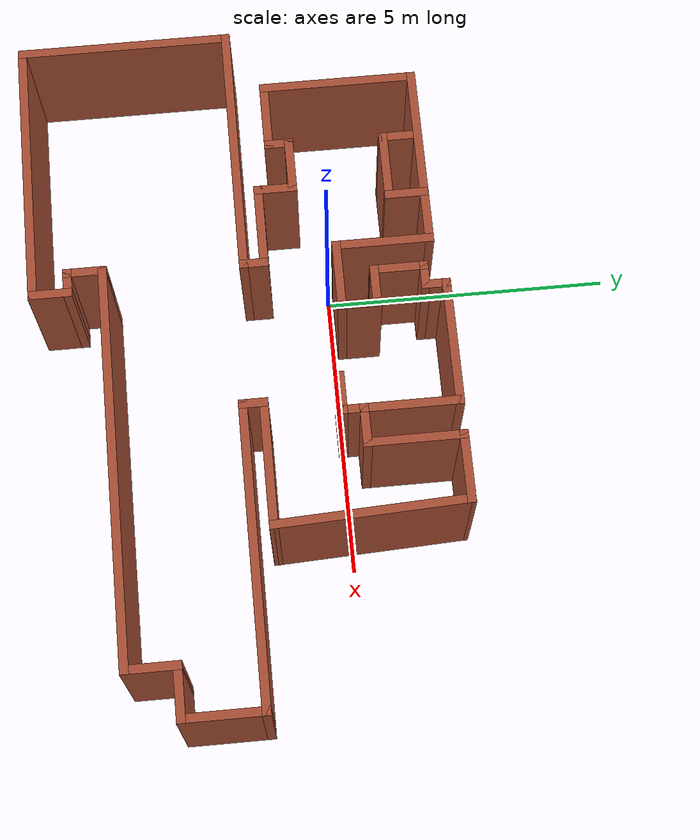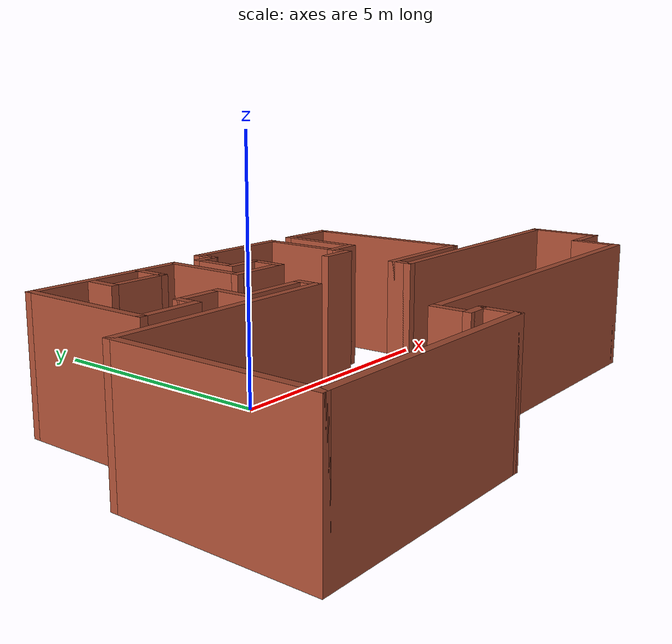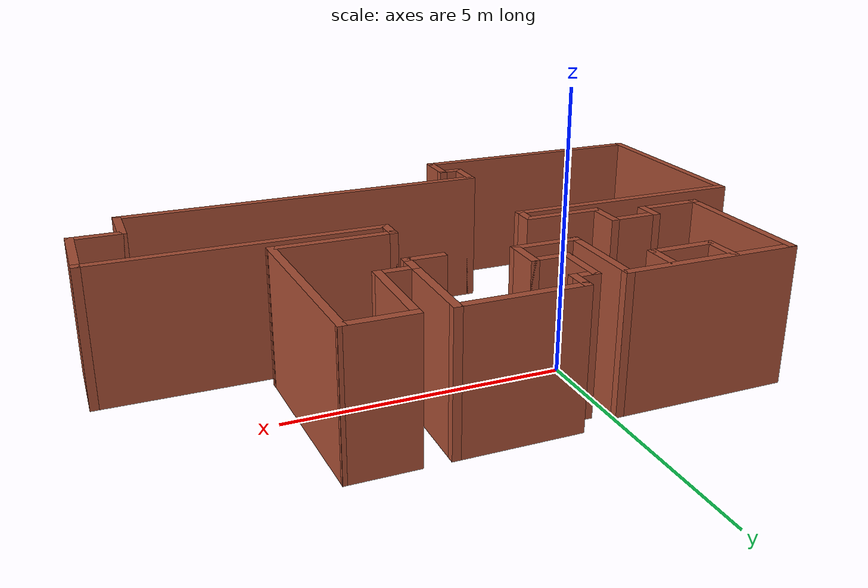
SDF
<?xml version='1.0'?>
<sdf version='1.6'>
  <model name='map_72'>
    <pose frame=''>1.7 -1.54528 0 0 -0 0</pose>
    <link name='Wall_1'>
      <collision name='Wall_1_Collision'>
        <geometry>
          <box>
            <size>1.25 0.15 2.5</size>
          </box>
        </geometry>
        <pose frame=''>0 0 1.25 0 -0 0</pose>
      </collision>
      <visual name='Wall_1_Visual'>
        <pose frame=''>0 0 1.25 0 -0 0</pose>
        <geometry>
          <box>
            <size>1.25 0.15 2.5</size>
          </box>
        </geometry>
        <material>
          <script>
            <uri>file://media/materials/scripts/gazebo.material</uri>
            <name>Gazebo/Bricks</name>
          </script>
          <ambient>1 1 1 1</ambient>
        </material>
        <meta>
          <layer>0</layer>
        </meta>
      </visual>
      <pose frame=''>2.275 3.49831 0 0 -0 3.14159</pose>
    </link>
    <link name='Wall_10'>
      <collision name='Wall_10_Collision'>
        <geometry>
          <box>
            <size>0.75 0.15 2.5</size>
          </box>
        </geometry>
        <pose frame=''>0 0 1.25 0 -0 0</pose>
      </collision>
      <visual name='Wall_10_Visual'>
        <pose frame=''>0 0 1.25 0 -0 0</pose>
        <geometry>
          <box>
            <size>0.75 0.15 2.5</size>
          </box>
        </geometry>
        <material>
          <script>
            <uri>file://media/materials/scripts/gazebo.material</uri>
            <name>Gazebo/Bricks</name>
          </script>
          <ambient>1 1 1 1</ambient>
        </material>
        <meta>
          <layer>0</layer>
        </meta>
      </visual>
      <pose frame=''>-0.725 1.99831 0 0 -0 -1.5708</pose>
    </link>
    <link name='Wall_11'>
      <collision name='Wall_11_Collision'>
        <geometry>
          <box>
            <size>1.25 0.15 2.5</size>
          </box>
        </geometry>
        <pose frame=''>0 0 1.25 0 -0 0</pose>
      </collision>
      <visual name='Wall_11_Visual'>
        <pose frame=''>0 0 1.25 0 -0 0</pose>
        <geometry>
          <box>
            <size>1.25 0.15 2.5</size>
          </box>
        </geometry>
        <material>
          <script>
            <uri>file://media/materials/scripts/gazebo.material</uri>
            <name>Gazebo/Bricks</name>
          </script>
          <ambient>1 1 1 1</ambient>
        </material>
        <meta>
          <layer>0</layer>
        </meta>
      </visual>
      <pose frame=''>-1.275 1.69831 0 0 -0 3.14159</pose>
    </link>
    <link name='Wall_12'>
      <collision name='Wall_12_Collision'>
        <geometry>
          <box>
            <size>1.75 0.15 2.5</size>
          </box>
        </geometry>
        <pose frame=''>0 0 1.25 0 -0 0</pose>
      </collision>
      <visual name='Wall_12_Visual'>
        <pose frame=''>0 0 1.25 0 -0 0</pose>
        <geometry>
          <box>
            <size>1.75 0.15 2.5</size>
          </box>
        </geometry>
        <material>
          <script>
            <uri>file://media/materials/scripts/gazebo.material</uri>
            <name>Gazebo/Bricks</name>
          </script>
          <ambient>1 1 1 1</ambient>
        </material>
        <meta>
          <layer>0</layer>
        </meta>
      </visual>
      <pose frame=''>-1.825 2.49831 0 0 -0 1.5708</pose>
    </link>
    <link name='Wall_13'>
      <collision name='Wall_13_Collision'>
        <geometry>
          <box>
            <size>3.25 0.15 2.5</size>
          </box>
        </geometry>
        <pose frame=''>0 0 1.25 0 -0 0</pose>
      </collision>
      <visual name='Wall_13_Visual'>
        <pose frame=''>0 0 1.25 0 -0 0</pose>
        <geometry>
          <box>
            <size>3.25 0.15 2.5</size>
          </box>
        </geometry>
        <material>
          <script>
            <uri>file://media/materials/scripts/gazebo.material</uri>
            <name>Gazebo/Bricks</name>
          </script>
          <ambient>1 1 1 1</ambient>
        </material>
        <meta>
          <layer>0</layer>
        </meta>
      </visual>
      <pose frame=''>-3.375 3.29831 0 0 -0 3.14159</pose>
    </link>
    <link name='Wall_14'>
      <collision name='Wall_14_Collision'>
        <geometry>
          <box>
            <size>2.75 0.15 2.5</size>
          </box>
        </geometry>
        <pose frame=''>0 0 1.25 0 -0 0</pose>
      </collision>
      <visual name='Wall_14_Visual'>
        <pose frame=''>0 0 1.25 0 -0 0</pose>
        <geometry>
          <box>
            <size>2.75 0.15 2.5</size>
          </box>
        </geometry>
        <material>
          <script>
            <uri>file://media/materials/scripts/gazebo.material</uri>
            <name>Gazebo/Bricks</name>
          </script>
          <ambient>1 1 1 1</ambient>
        </material>
        <meta>
          <layer>0</layer>
        </meta>
      </visual>
      <pose frame=''>-4.925 1.99831 0 0 -0 -1.5708</pose>
    </link>
    <link name='Wall_15'>
      <collision name='Wall_15_Collision'>
        <geometry>
          <box>
            <size>1.25 0.15 2.5</size>
          </box>
        </geometry>
        <pose frame=''>0 0 1.25 0 -0 0</pose>
      </collision>
      <visual name='Wall_15_Visual'>
        <pose frame=''>0 0 1.25 0 -0 0</pose>
        <geometry>
          <box>
            <size>1.25 0.15 2.5</size>
          </box>
        </geometry>
        <material>
          <script>
            <uri>file://media/materials/scripts/gazebo.material</uri>
            <name>Gazebo/Bricks</name>
          </script>
          <ambient>1 1 1 1</ambient>
        </material>
        <meta>
          <layer>0</layer>
        </meta>
      </visual>
      <pose frame=''>-4.375 0.698311 0 0 -0 0</pose>
    </link>
    <link name='Wall_16'>
      <collision name='Wall_16_Collision'>
        <geometry>
          <box>
            <size>0.5 0.15 2.5</size>
          </box>
        </geometry>
        <pose frame=''>0 0 1.25 0 -0 0</pose>
      </collision>
      <visual name='Wall_16_Visual'>
        <pose frame=''>0 0 1.25 0 -0 0</pose>
        <geometry>
          <box>
            <size>0.5 0.15 2.5</size>
          </box>
        </geometry>
        <material>
          <script>
            <uri>file://media/materials/scripts/gazebo.material</uri>
            <name>Gazebo/Bricks</name>
          </script>
          <ambient>1 1 1 1</ambient>
        </material>
        <meta>
          <layer>0</layer>
        </meta>
      </visual>
      <pose frame=''>-3.825 0.873311 0 0 -0 1.5708</pose>
    </link>
    <link name='Wall_17'>
      <collision name='Wall_17_Collision'>
        <geometry>
          <box>
            <size>1 0.15 2.5</size>
          </box>
        </geometry>
        <pose frame=''>0 0 1.25 0 -0 0</pose>
      </collision>
      <visual name='Wall_17_Visual'>
        <pose frame=''>0 0 1.25 0 -0 0</pose>
        <geometry>
          <box>
            <size>1 0.15 2.5</size>
          </box>
        </geometry>
        <material>
          <script>
            <uri>file://media/materials/scripts/gazebo.material</uri>
            <name>Gazebo/Bricks</name>
          </script>
          <ambient>1 1 1 1</ambient>
        </material>
        <meta>
          <layer>0</layer>
        </meta>
      </visual>
      <pose frame=''>-3.4 1.04831 0 0 -0 0</pose>
    </link>
    <link name='Wall_18'>
      <collision name='Wall_18_Collision'>
        <geometry>
          <box>
            <size>0.75 0.15 2.5</size>
          </box>
        </geometry>
        <pose frame=''>0 0 1.25 0 -0 0</pose>
      </collision>
      <visual name='Wall_18_Visual'>
        <pose frame=''>0 0 1.25 0 -0 0</pose>
        <geometry>
          <box>
            <size>0.75 0.15 2.5</size>
          </box>
        </geometry>
        <material>
          <script>
            <uri>file://media/materials/scripts/gazebo.material</uri>
            <name>Gazebo/Bricks</name>
          </script>
          <ambient>1 1 1 1</ambient>
        </material>
        <meta>
          <layer>0</layer>
        </meta>
      </visual>
      <pose frame=''>-2.975 0.748311 0 0 -0 -1.5708</pose>
    </link>
    <link name='Wall_19'>
      <collision name='Wall_19_Collision'>
        <geometry>
          <box>
            <size>1.5 0.15 2.5</size>
          </box>
        </geometry>
        <pose frame=''>0 0 1.25 0 -0 0</pose>
      </collision>
      <visual name='Wall_19_Visual'>
        <pose frame=''>0 0 1.25 0 -0 0</pose>
        <geometry>
          <box>
            <size>1.5 0.15 2.5</size>
          </box>
        </geometry>
        <material>
          <script>
            <uri>file://media/materials/scripts/gazebo.material</uri>
            <name>Gazebo/Bricks</name>
          </script>
          <ambient>1 1 1 1</ambient>
        </material>
        <meta>
          <layer>0</layer>
        </meta>
      </visual>
      <pose frame=''>-2.3 0.448311 0 0 -0 0</pose>
    </link>
    <link name='Wall_2'>
      <collision name='Wall_2_Collision'>
        <geometry>
          <box>
            <size>1.75 0.15 2.5</size>
          </box>
        </geometry>
        <pose frame=''>0 0 1.25 0 -0 0</pose>
      </collision>
      <visual name='Wall_2_Visual'>
        <pose frame=''>0 0 1.25 0 -0 0</pose>
        <geometry>
          <box>
            <size>1.75 0.15 2.5</size>
          </box>
        </geometry>
        <material>
          <script>
            <uri>file://media/materials/scripts/gazebo.material</uri>
            <name>Gazebo/Bricks</name>
          </script>
          <ambient>1 1 1 1</ambient>
        </material>
        <meta>
          <layer>0</layer>
        </meta>
      </visual>
      <pose frame=''>1.725 2.69831 0 0 -0 -1.5708</pose>
    </link>
    <link name='Wall_20'>
      <collision name='Wall_20_Collision'>
        <geometry>
          <box>
            <size>0.5 0.15 2.5</size>
          </box>
        </geometry>
        <pose frame=''>0 0 1.25 0 -0 0</pose>
      </collision>
      <visual name='Wall_20_Visual'>
        <pose frame=''>0 0 1.25 0 -0 0</pose>
        <geometry>
          <box>
            <size>0.5 0.15 2.5</size>
          </box>
        </geometry>
        <material>
          <script>
            <uri>file://media/materials/scripts/gazebo.material</uri>
            <name>Gazebo/Bricks</name>
          </script>
          <ambient>1 1 1 1</ambient>
        </material>
        <meta>
          <layer>0</layer>
        </meta>
      </visual>
      <pose frame=''>-1.625 0.273311 0 0 -0 -1.5708</pose>
    </link>
    <link name='Wall_21'>
      <collision name='Wall_21_Collision'>
        <geometry>
          <box>
            <size>4.5 0.15 2.5</size>
          </box>
        </geometry>
        <pose frame=''>0 0 1.25 0 -0 0</pose>
      </collision>
      <visual name='Wall_21_Visual'>
        <pose frame=''>0 0 1.25 0 -0 0</pose>
        <geometry>
          <box>
            <size>4.5 0.15 2.5</size>
          </box>
        </geometry>
        <material>
          <script>
            <uri>file://media/materials/scripts/gazebo.material</uri>
            <name>Gazebo/Bricks</name>
          </script>
          <ambient>1 1 1 1</ambient>
        </material>
        <meta>
          <layer>0</layer>
        </meta>
      </visual>
      <pose frame=''>-3.8 0.098311 0 0 -0 3.14159</pose>
    </link>
    <link name='Wall_23'>
      <collision name='Wall_23_Collision'>
        <geometry>
          <box>
            <size>3.75 0.15 2.5</size>
          </box>
        </geometry>
        <pose frame=''>0 0 1.25 0 -0 0</pose>
      </collision>
      <visual name='Wall_23_Visual'>
        <pose frame=''>0 0 1.25 0 -0 0</pose>
        <geometry>
          <box>
            <size>3.75 0.15 2.5</size>
          </box>
        </geometry>
        <material>
          <script>
            <uri>file://media/materials/scripts/gazebo.material</uri>
            <name>Gazebo/Bricks</name>
          </script>
          <ambient>1 1 1 1</ambient>
        </material>
        <meta>
          <layer>0</layer>
        </meta>
      </visual>
      <pose frame=''>-5.975 -1.70169 0 0 -0 -1.5708</pose>
    </link>
    <link name='Wall_24'>
      <collision name='Wall_24_Collision'>
        <geometry>
          <box>
            <size>4.75 0.15 2.5</size>
          </box>
        </geometry>
        <pose frame=''>0 0 1.25 0 -0 0</pose>
      </collision>
      <visual name='Wall_24_Visual'>
        <pose frame=''>0 0 1.25 0 -0 0</pose>
        <geometry>
          <box>
            <size>4.75 0.15 2.5</size>
          </box>
        </geometry>
        <material>
          <script>
            <uri>file://media/materials/scripts/gazebo.material</uri>
            <name>Gazebo/Bricks</name>
          </script>
          <ambient>1 1 1 1</ambient>
        </material>
        <meta>
          <layer>0</layer>
        </meta>
      </visual>
      <pose frame=''>-3.675 -3.50169 0 0 -0 0</pose>
    </link>
    <link name='Wall_25'>
      <collision name='Wall_25_Collision'>
        <geometry>
          <box>
            <size>0.75 0.15 2.5</size>
          </box>
        </geometry>
        <pose frame=''>0 0 1.25 0 -0 0</pose>
      </collision>
      <visual name='Wall_25_Visual'>
        <pose frame=''>0 0 1.25 0 -0 0</pose>
        <geometry>
          <box>
            <size>0.75 0.15 2.5</size>
          </box>
        </geometry>
        <material>
          <script>
            <uri>file://media/materials/scripts/gazebo.material</uri>
            <name>Gazebo/Bricks</name>
          </script>
          <ambient>1 1 1 1</ambient>
        </material>
        <meta>
          <layer>0</layer>
        </meta>
      </visual>
      <pose frame=''>-1.375 -3.20169 0 0 -0 1.5708</pose>
    </link>
    <link name='Wall_26'>
      <collision name='Wall_26_Collision'>
        <geometry>
          <box>
            <size>0.5 0.15 2.5</size>
          </box>
        </geometry>
        <pose frame=''>0 0 1.25 0 -0 0</pose>
      </collision>
      <visual name='Wall_26_Visual'>
        <pose frame=''>0 0 1.25 0 -0 0</pose>
        <geometry>
          <box>
            <size>0.5 0.15 2.5</size>
          </box>
        </geometry>
        <material>
          <script>
            <uri>file://media/materials/scripts/gazebo.material</uri>
            <name>Gazebo/Bricks</name>
          </script>
          <ambient>1 1 1 1</ambient>
        </material>
        <meta>
          <layer>0</layer>
        </meta>
      </visual>
      <pose frame=''>-1.55 -2.90169 0 0 -0 3.14159</pose>
    </link>
    <link name='Wall_3'>
      <collision name='Wall_3_Collision'>
        <geometry>
          <box>
            <size>0.75 0.15 2.5</size>
          </box>
        </geometry>
        <pose frame=''>0 0 1.25 0 -0 0</pose>
      </collision>
      <visual name='Wall_3_Visual'>
        <pose frame=''>0 0 1.25 0 -0 0</pose>
        <geometry>
          <box>
            <size>0.75 0.15 2.5</size>
          </box>
        </geometry>
        <material>
          <script>
            <uri>file://media/materials/scripts/gazebo.material</uri>
            <name>Gazebo/Bricks</name>
          </script>
          <ambient>1 1 1 1</ambient>
        </material>
        <meta>
          <layer>0</layer>
        </meta>
      </visual>
      <pose frame=''>1.425 1.89831 0 0 -0 3.14159</pose>
    </link>
    <link name='Wall_32'>
      <collision name='Wall_32_Collision'>
        <geometry>
          <box>
            <size>0.75 0.15 2.5</size>
          </box>
        </geometry>
        <pose frame=''>0 0 1.25 0 -0 0</pose>
      </collision>
      <visual name='Wall_32_Visual'>
        <pose frame=''>0 0 1.25 0 -0 0</pose>
        <geometry>
          <box>
            <size>0.75 0.15 2.5</size>
          </box>
        </geometry>
        <material>
          <script>
            <uri>file://media/materials/scripts/gazebo.material</uri>
            <name>Gazebo/Bricks</name>
          </script>
          <ambient>1 1 1 1</ambient>
        </material>
        <meta>
          <layer>0</layer>
        </meta>
      </visual>
      <pose frame=''>-1.725 -2.60169 0 0 -0 1.5708</pose>
    </link>
    <link name='Wall_33'>
      <collision name='Wall_33_Collision'>
        <geometry>
          <box>
            <size>7 0.15 2.5</size>
          </box>
        </geometry>
        <pose frame=''>0 0 1.25 0 -0 0</pose>
      </collision>
      <visual name='Wall_33_Visual'>
        <pose frame=''>0 0 1.25 0 -0 0</pose>
        <geometry>
          <box>
            <size>7 0.15 2.5</size>
          </box>
        </geometry>
        <material>
          <script>
            <uri>file://media/materials/scripts/gazebo.material</uri>
            <name>Gazebo/Bricks</name>
          </script>
          <ambient>1 1 1 1</ambient>
        </material>
        <meta>
          <layer>0</layer>
        </meta>
      </visual>
      <pose frame=''>1.7 -2.30169 0 0 -0 0</pose>
    </link>
    <link name='Wall_34'>
      <collision name='Wall_34_Collision'>
        <geometry>
          <box>
            <size>1 0.15 2.5</size>
          </box>
        </geometry>
        <pose frame=''>0 0 1.25 0 -0 0</pose>
      </collision>
      <visual name='Wall_34_Visual'>
        <pose frame=''>0 0 1.25 0 -0 0</pose>
        <geometry>
          <box>
            <size>1 0.15 2.5</size>
          </box>
        </geometry>
        <material>
          <script>
            <uri>file://media/materials/scripts/gazebo.material</uri>
            <name>Gazebo/Bricks</name>
          </script>
          <ambient>1 1 1 1</ambient>
        </material>
        <meta>
          <layer>0</layer>
        </meta>
      </visual>
      <pose frame=''>5.125 -1.87669 0 0 -0 1.5708</pose>
    </link>
    <link name='Wall_35'>
      <collision name='Wall_35_Collision'>
        <geometry>
          <box>
            <size>1 0.15 2.5</size>
          </box>
        </geometry>
        <pose frame=''>0 0 1.25 0 -0 0</pose>
      </collision>
      <visual name='Wall_35_Visual'>
        <pose frame=''>0 0 1.25 0 -0 0</pose>
        <geometry>
          <box>
            <size>1 0.15 2.5</size>
          </box>
        </geometry>
        <material>
          <script>
            <uri>file://media/materials/scripts/gazebo.material</uri>
            <name>Gazebo/Bricks</name>
          </script>
          <ambient>1 1 1 1</ambient>
        </material>
        <meta>
          <layer>0</layer>
        </meta>
      </visual>
      <pose frame=''>5.55 -1.45169 0 0 -0 0</pose>
    </link>
    <link name='Wall_36'>
      <collision name='Wall_36_Collision'>
        <geometry>
          <box>
            <size>1.5 0.15 2.5</size>
          </box>
        </geometry>
        <pose frame=''>0 0 1.25 0 -0 0</pose>
      </collision>
      <visual name='Wall_36_Visual'>
        <pose frame=''>0 0 1.25 0 -0 0</pose>
        <geometry>
          <box>
            <size>1.5 0.15 2.5</size>
          </box>
        </geometry>
        <material>
          <script>
            <uri>file://media/materials/scripts/gazebo.material</uri>
            <name>Gazebo/Bricks</name>
          </script>
          <ambient>1 1 1 1</ambient>
        </material>
        <meta>
          <layer>0</layer>
        </meta>
      </visual>
      <pose frame=''>5.975 -0.776689 0 0 -0 1.5708</pose>
    </link>
    <link name='Wall_37'>
      <collision name='Wall_37_Collision'>
        <geometry>
          <box>
            <size>5.25 0.15 2.5</size>
          </box>
        </geometry>
        <pose frame=''>0 0 1.25 0 -0 0</pose>
      </collision>
      <visual name='Wall_37_Visual'>
        <pose frame=''>0 0 1.25 0 -0 0</pose>
        <geometry>
          <box>
            <size>5.25 0.15 2.5</size>
          </box>
        </geometry>
        <material>
          <script>
            <uri>file://media/materials/scripts/gazebo.material</uri>
            <name>Gazebo/Bricks</name>
          </script>
          <ambient>1 1 1 1</ambient>
        </material>
        <meta>
          <layer>0</layer>
        </meta>
      </visual>
      <pose frame=''>3.425 -0.101689 0 0 -0 3.14159</pose>
    </link>
    <link name='Wall_38'>
      <collision name='Wall_38_Collision'>
        <geometry>
          <box>
            <size>0.5 0.15 2.5</size>
          </box>
        </geometry>
        <pose frame=''>0 0 1.25 0 -0 0</pose>
      </collision>
      <visual name='Wall_38_Visual'>
        <pose frame=''>0 0 1.25 0 -0 0</pose>
        <geometry>
          <box>
            <size>0.5 0.15 2.5</size>
          </box>
        </geometry>
        <material>
          <script>
            <uri>file://media/materials/scripts/gazebo.material</uri>
            <name>Gazebo/Bricks</name>
          </script>
          <ambient>1 1 1 1</ambient>
        </material>
        <meta>
          <layer>0</layer>
        </meta>
      </visual>
      <pose frame=''>0.875 0.073311 0 0 -0 1.5708</pose>
    </link>
    <link name='Wall_4'>
      <collision name='Wall_4_Collision'>
        <geometry>
          <box>
            <size>1.75 0.15 2.5</size>
          </box>
        </geometry>
        <pose frame=''>0 0 1.25 0 -0 0</pose>
      </collision>
      <visual name='Wall_4_Visual'>
        <pose frame=''>0 0 1.25 0 -0 0</pose>
        <geometry>
          <box>
            <size>1.75 0.15 2.5</size>
          </box>
        </geometry>
        <material>
          <script>
            <uri>file://media/materials/scripts/gazebo.material</uri>
            <name>Gazebo/Bricks</name>
          </script>
          <ambient>1 1 1 1</ambient>
        </material>
        <meta>
          <layer>0</layer>
        </meta>
      </visual>
      <pose frame=''>1.125 2.69831 0 0 -0 1.5708</pose>
    </link>
    <link name='Wall_41'>
      <collision name='Wall_41_Collision'>
        <geometry>
          <box>
            <size>2.25 0.15 2.5</size>
          </box>
        </geometry>
        <pose frame=''>0 0 1.25 0 -0 0</pose>
      </collision>
      <visual name='Wall_41_Visual'>
        <pose frame=''>0 0 1.25 0 -0 0</pose>
        <geometry>
          <box>
            <size>2.25 0.15 2.5</size>
          </box>
        </geometry>
        <material>
          <script>
            <uri>file://media/materials/scripts/gazebo.material</uri>
            <name>Gazebo/Bricks</name>
          </script>
          <ambient>1 1 1 1</ambient>
        </material>
        <meta>
          <layer>0</layer>
        </meta>
      </visual>
      <pose frame=''>1.925 0.248311 0 0 -0 0</pose>
    </link>
    <link name='Wall_42'>
      <collision name='Wall_42_Collision'>
        <geometry>
          <box>
            <size>3.40346 0.15 2.5</size>
          </box>
        </geometry>
        <pose frame=''>0 0 1.25 0 -0 0</pose>
      </collision>
      <visual name='Wall_42_Visual'>
        <pose frame=''>0 0 1.25 0 -0 0</pose>
        <geometry>
          <box>
            <size>3.40346 0.15 2.5</size>
          </box>
        </geometry>
        <material>
          <script>
            <uri>file://media/materials/scripts/gazebo.material</uri>
            <name>Gazebo/Bricks</name>
          </script>
          <ambient>1 1 1 1</ambient>
        </material>
        <meta>
          <layer>0</layer>
        </meta>
      </visual>
      <pose frame=''>2.9 1.87331 0 0 -0 1.61692</pose>
    </link>
    <link name='Wall_44'>
      <collision name='Wall_44_Collision'>
        <geometry>
          <box>
            <size>0.5 0.15 2.5</size>
          </box>
        </geometry>
        <pose frame=''>0 0 1.25 0 -0 0</pose>
      </collision>
      <visual name='Wall_44_Visual'>
        <pose frame=''>0 0 1.25 0 -0 0</pose>
        <geometry>
          <box>
            <size>0.5 0.15 2.5</size>
          </box>
        </geometry>
        <material>
          <script>
            <uri>file://media/materials/scripts/gazebo.material</uri>
            <name>Gazebo/Bricks</name>
          </script>
          <ambient>1 1 1 1</ambient>
        </material>
        <meta>
          <layer>0</layer>
        </meta>
      </visual>
      <pose frame=''>1.125 1.72331 0 0 -0 -1.5708</pose>
    </link>
    <link name='Wall_48'>
      <collision name='Wall_48_Collision'>
        <geometry>
          <box>
            <size>0.75 0.15 2.5</size>
          </box>
        </geometry>
        <pose frame=''>0 0 1.25 0 -0 0</pose>
      </collision>
      <visual name='Wall_48_Visual'>
        <pose frame=''>0 0 1.25 0 -0 0</pose>
        <geometry>
          <box>
            <size>0.75 0.15 2.5</size>
          </box>
        </geometry>
        <material>
          <script>
            <uri>file://media/materials/scripts/gazebo.material</uri>
            <name>Gazebo/Bricks</name>
          </script>
          <ambient>1 1 1 1</ambient>
        </material>
        <meta>
          <layer>0</layer>
        </meta>
      </visual>
      <pose frame=''>0.825 1.54831 0 0 -0 3.14159</pose>
    </link>
    <link name='Wall_5'>
      <collision name='Wall_5_Collision'>
        <geometry>
          <box>
            <size>2.25 0.15 2.5</size>
          </box>
        </geometry>
        <pose frame=''>0 0 1.25 0 -0 0</pose>
      </collision>
      <visual name='Wall_5_Visual'>
        <pose frame=''>0 0 1.25 0 -0 0</pose>
        <geometry>
          <box>
            <size>2.25 0.15 2.5</size>
          </box>
        </geometry>
        <material>
          <script>
            <uri>file://media/materials/scripts/gazebo.material</uri>
            <name>Gazebo/Bricks</name>
          </script>
          <ambient>1 1 1 1</ambient>
        </material>
        <meta>
          <layer>0</layer>
        </meta>
      </visual>
      <pose frame=''>0.075 3.49831 0 0 -0 3.14159</pose>
    </link>
    <link name='Wall_50'>
      <collision name='Wall_50_Collision'>
        <geometry>
          <box>
            <size>0.75 0.15 2.5</size>
          </box>
        </geometry>
        <pose frame=''>0 0 1.25 0 -0 0</pose>
      </collision>
      <visual name='Wall_50_Visual'>
        <pose frame=''>0 0 1.25 0 -0 0</pose>
        <geometry>
          <box>
            <size>0.75 0.15 2.5</size>
          </box>
        </geometry>
        <material>
          <script>
            <uri>file://media/materials/scripts/gazebo.material</uri>
            <name>Gazebo/Bricks</name>
          </script>
          <ambient>1 1 1 1</ambient>
        </material>
        <meta>
          <layer>0</layer>
        </meta>
      </visual>
      <pose frame=''>-3.79035 2.99013 0 0 -0 -1.5708</pose>
    </link>
    <link name='Wall_51'>
      <collision name='Wall_51_Collision'>
        <geometry>
          <box>
            <size>1.25 0.15 2.5</size>
          </box>
        </geometry>
        <pose frame=''>0 0 1.25 0 -0 0</pose>
      </collision>
      <visual name='Wall_51_Visual'>
        <pose frame=''>0 0 1.25 0 -0 0</pose>
        <geometry>
          <box>
            <size>1.25 0.15 2.5</size>
          </box>
        </geometry>
        <material>
          <script>
            <uri>file://media/materials/scripts/gazebo.material</uri>
            <name>Gazebo/Bricks</name>
          </script>
          <ambient>1 1 1 1</ambient>
        </material>
        <meta>
          <layer>0</layer>
        </meta>
      </visual>
      <pose frame=''>-3.24035 2.69014 0 0 -0 0</pose>
    </link>
    <link name='Wall_52'>
      <collision name='Wall_52_Collision'>
        <geometry>
          <box>
            <size>0.75 0.15 2.5</size>
          </box>
        </geometry>
        <pose frame=''>0 0 1.25 0 -0 0</pose>
      </collision>
      <visual name='Wall_52_Visual'>
        <pose frame=''>0 0 1.25 0 -0 0</pose>
        <geometry>
          <box>
            <size>0.75 0.15 2.5</size>
          </box>
        </geometry>
        <material>
          <script>
            <uri>file://media/materials/scripts/gazebo.material</uri>
            <name>Gazebo/Bricks</name>
          </script>
          <ambient>1 1 1 1</ambient>
        </material>
        <meta>
          <layer>0</layer>
        </meta>
      </visual>
      <pose frame=''>-2.69035 2.99013 0 0 -0 1.5708</pose>
    </link>
    <link name='Wall_6'>
      <collision name='Wall_6_Collision'>
        <geometry>
          <box>
            <size>0.5 0.15 2.5</size>
          </box>
        </geometry>
        <pose frame=''>0 0 1.25 0 -0 0</pose>
      </collision>
      <visual name='Wall_6_Visual'>
        <pose frame=''>0 0 1.25 0 -0 0</pose>
        <geometry>
          <box>
            <size>0.5 0.15 2.5</size>
          </box>
        </geometry>
        <material>
          <script>
            <uri>file://media/materials/scripts/gazebo.material</uri>
            <name>Gazebo/Bricks</name>
          </script>
          <ambient>1 1 1 1</ambient>
        </material>
        <meta>
          <layer>0</layer>
        </meta>
      </visual>
      <pose frame=''>-0.975 3.32331 0 0 -0 -1.5708</pose>
    </link>
    <link name='Wall_7'>
      <collision name='Wall_7_Collision'>
        <geometry>
          <box>
            <size>0.5 0.15 2.5</size>
          </box>
        </geometry>
        <pose frame=''>0 0 1.25 0 -0 0</pose>
      </collision>
      <visual name='Wall_7_Visual'>
        <pose frame=''>0 0 1.25 0 -0 0</pose>
        <geometry>
          <box>
            <size>0.5 0.15 2.5</size>
          </box>
        </geometry>
        <material>
          <script>
            <uri>file://media/materials/scripts/gazebo.material</uri>
            <name>Gazebo/Bricks</name>
          </script>
          <ambient>1 1 1 1</ambient>
        </material>
        <meta>
          <layer>0</layer>
        </meta>
      </visual>
      <pose frame=''>-1.15 3.14831 0 0 -0 3.14159</pose>
    </link>
    <link name='Wall_8'>
      <collision name='Wall_8_Collision'>
        <geometry>
          <box>
            <size>1 0.15 2.5</size>
          </box>
        </geometry>
        <pose frame=''>0 0 1.25 0 -0 0</pose>
      </collision>
      <visual name='Wall_8_Visual'>
        <pose frame=''>0 0 1.25 0 -0 0</pose>
        <geometry>
          <box>
            <size>1 0.15 2.5</size>
          </box>
        </geometry>
        <material>
          <script>
            <uri>file://media/materials/scripts/gazebo.material</uri>
            <name>Gazebo/Bricks</name>
          </script>
          <ambient>1 1 1 1</ambient>
        </material>
        <meta>
          <layer>0</layer>
        </meta>
      </visual>
      <pose frame=''>-1.325 2.72331 0 0 -0 -1.5708</pose>
    </link>
    <link name='Wall_9'>
      <collision name='Wall_9_Collision'>
        <geometry>
          <box>
            <size>0.75 0.15 2.5</size>
          </box>
        </geometry>
        <pose frame=''>0 0 1.25 0 -0 0</pose>
      </collision>
      <visual name='Wall_9_Visual'>
        <pose frame=''>0 0 1.25 0 -0 0</pose>
        <geometry>
          <box>
            <size>0.75 0.15 2.5</size>
          </box>
        </geometry>
        <material>
          <script>
            <uri>file://media/materials/scripts/gazebo.material</uri>
            <name>Gazebo/Bricks</name>
          </script>
          <ambient>1 1 1 1</ambient>
        </material>
        <meta>
          <layer>0</layer>
        </meta>
      </visual>
      <pose frame=''>-1.025 2.29831 0 0 -0 0</pose>
    </link>
    <static>1</static>
  </model>
</sdf>
